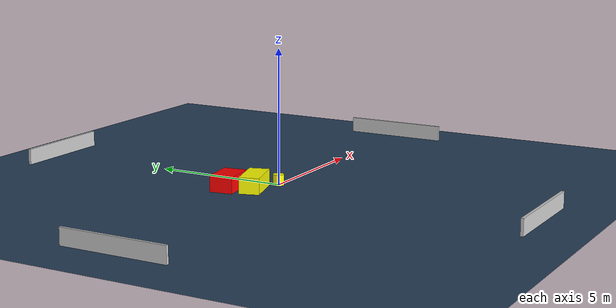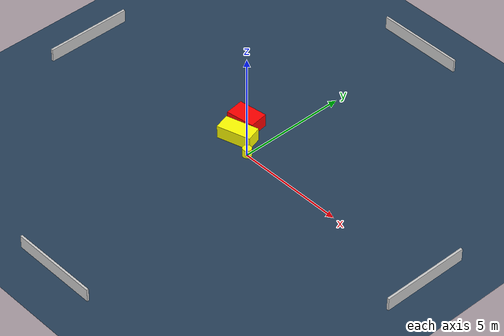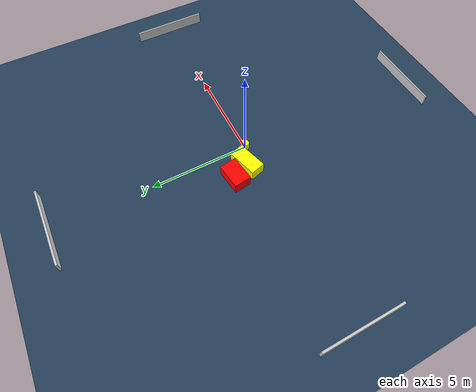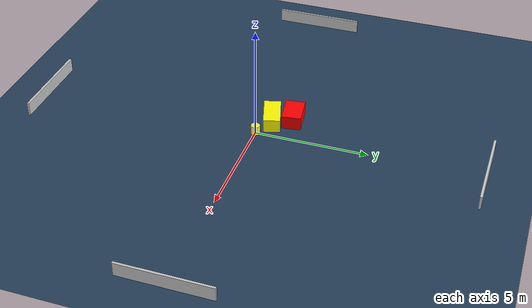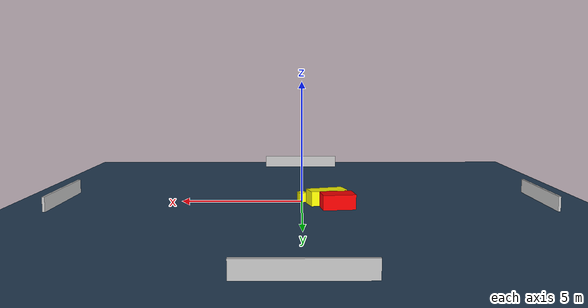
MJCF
<?xml version="1.0" ?>
<mujoco model="generated_environment">
  <option timestep="0.01" integrator="RK4" cone="elliptic"/>
  <default>
    <geom density="1"/>
  </default>
  <asset>
    <texture builtin="gradient" height="3072" name="skybox" rgb1="0.3 0.5 0.7" rgb2="0 0 0" type="skybox" width="512"/>
    <texture builtin="checker" height="300" name="groundplane" rgb1="0.2 0.3 0.4" rgb2="0.1 0.2 0.3" type="2d" width="300"/>
    <material name="groundplane" reflectance="0.2" texrepeat="5 5" texture="groundplane"/>
  </asset>
  <worldbody>
    <light dir="0 0 -1" directional="true" pos="0 0 1.5"/>
    <geom condim="3" friction="0.5 0.005 0.001" material="groundplane" name="floor" pos="0 0 0" size="0 0 0.05" type="plane"/>
    <body name="walls">
      <geom name="wall_1" condim="4" pos="-10.0 0.0 0.3" rgba="0.800000011920929 0.800000011920929 0.800000011920929 1.0" size="0.05 2.0 0.3" type="box"/>
      <geom name="wall_2" condim="4" pos="10.0 0.0 0.3" rgba="0.800000011920929 0.800000011920929 0.800000011920929 1.0" size="0.05 2.0 0.3" type="box"/>
      <geom name="wall_3" condim="4" pos="0.0 -10.0 0.3" rgba="0.800000011920929 0.800000011920929 0.800000011920929 1.0" size="2.0 0.05 0.3" type="box"/>
      <geom name="wall_4" condim="4" pos="0.0 10.0 0.3" rgba="0.800000011920929 0.800000011920929 0.800000011920929 1.0" size="2.0 0.05 0.3" type="box"/>
    </body>
    <body name="robot">
      <joint name="joint_x" type="slide" pos="0 0 0" axis="1 0 0"/>
      <joint name="joint_y" type="slide" pos="0 0 0" axis="0 1 0"/>
      <geom name="robot" type="cylinder" pos="0.0 0.0 0.2" size="0.2 0.2 0.0" mass="5.0" friction="1.0 0.005 0.0001" condim="4" rgba="1.0 1.0 0.0 1.0"/>
    </body>
    <body name="obstacle_1_movable">
      <geom name="obstacle_1_movable" condim="4" pos="-1.015456081992428 0.42473889769456513 0.3" euler="0 0 196.46426754328846" friction="0.0 0.005 0.001" rgba="1.0 1.0 0.0 1.0" size="0.7717611789361405 0.37364311581565923 0.3" type="box" mass="0.1"/>
      <joint type="free"/>
    </body>
    <body name="obstacle_2_static">
      <geom name="obstacle_2_static" condim="4" pos="-1.4213007184336268 1.276287898648954 0.3" euler="0 0 277.82101227190424" friction="0.0 0.005 0.001" rgba="1.0 0.0 0.0 1.0" size="0.4340198475576167 0.6602123975233238 0.3" type="box"/>
    </body>
  </worldbody>
  <actuator>
    <motor name="actuator_x" joint="joint_x" gear="1" ctrlrange="-1 1"/>
    <motor name="actuator_y" joint="joint_y" gear="1" ctrlrange="-1 1"/>
  </actuator>
</mujoco>
